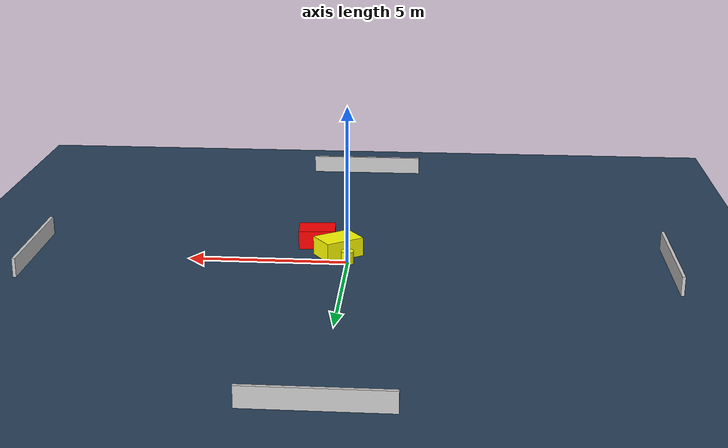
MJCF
<?xml version="1.0" ?>
<mujoco model="generated_environment">
  <option timestep="0.01" integrator="RK4" cone="elliptic"/>
  <default>
    <geom density="1"/>
  </default>
  <asset>
    <texture builtin="gradient" height="3072" name="skybox" rgb1="0.3 0.5 0.7" rgb2="0 0 0" type="skybox" width="512"/>
    <texture builtin="checker" height="300" name="groundplane" rgb1="0.2 0.3 0.4" rgb2="0.1 0.2 0.3" type="2d" width="300"/>
    <material name="groundplane" reflectance="0.2" texrepeat="5 5" texture="groundplane"/>
  </asset>
  <worldbody>
    <light dir="0 0 -1" directional="true" pos="0 0 1.5"/>
    <geom condim="3" friction="0.5 0.005 0.001" material="groundplane" name="floor" pos="0 0 0" size="0 0 0.05" type="plane"/>
    <body name="walls">
      <geom name="wall_1" condim="4" pos="-10.0 0.0 0.3" rgba="0.800000011920929 0.800000011920929 0.800000011920929 1.0" size="0.05 2.0 0.3" type="box"/>
      <geom name="wall_2" condim="4" pos="10.0 0.0 0.3" rgba="0.800000011920929 0.800000011920929 0.800000011920929 1.0" size="0.05 2.0 0.3" type="box"/>
      <geom name="wall_3" condim="4" pos="0.0 -10.0 0.3" rgba="0.800000011920929 0.800000011920929 0.800000011920929 1.0" size="2.0 0.05 0.3" type="box"/>
      <geom name="wall_4" condim="4" pos="0.0 10.0 0.3" rgba="0.800000011920929 0.800000011920929 0.800000011920929 1.0" size="2.0 0.05 0.3" type="box"/>
    </body>
    <body name="robot">
      <joint name="joint_x" type="slide" pos="0 0 0" axis="1 0 0"/>
      <joint name="joint_y" type="slide" pos="0 0 0" axis="0 1 0"/>
      <geom name="robot" type="cylinder" pos="0.0 0.0 0.2" size="0.2 0.2 0.0" mass="5.0" friction="1.0 0.005 0.0001" condim="4" rgba="1.0 1.0 0.0 1.0"/>
    </body>
    <body name="obstacle_1_movable">
      <geom name="obstacle_1_movable" condim="4" pos="0.3446552978676232 -0.7153999481145555 0.3" euler="0 0 214.7997155731462" friction="0.0 0.005 0.001" rgba="1.0 1.0 0.0 1.0" size="0.6466855343525056 0.46128295845218537 0.3" type="box" mass="0.1"/>
      <joint type="free"/>
    </body>
    <body name="obstacle_2_static">
      <geom name="obstacle_2_static" condim="4" pos="1.0985317866617583 -1.614675286090727 0.3" euler="0 0 3.824486718064044" friction="0.0 0.005 0.001" rgba="1.0 0.0 0.0 1.0" size="0.5852202603455965 0.4392432045015674 0.3" type="box"/>
    </body>
  </worldbody>
  <actuator>
    <motor name="actuator_x" joint="joint_x" gear="1" ctrlrange="-1 1"/>
    <motor name="actuator_y" joint="joint_y" gear="1" ctrlrange="-1 1"/>
  </actuator>
</mujoco>
